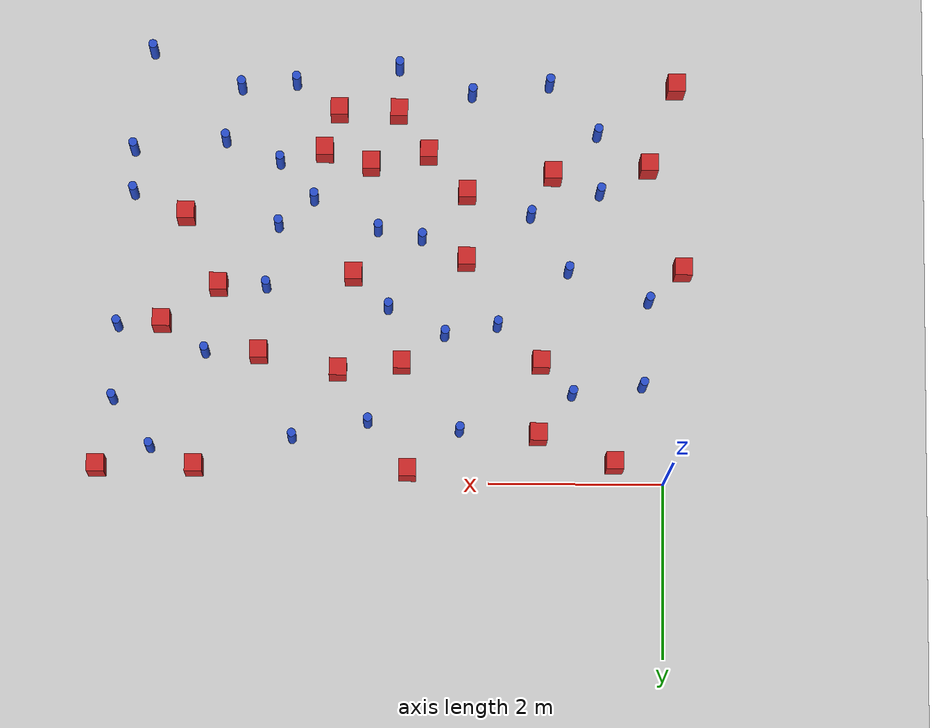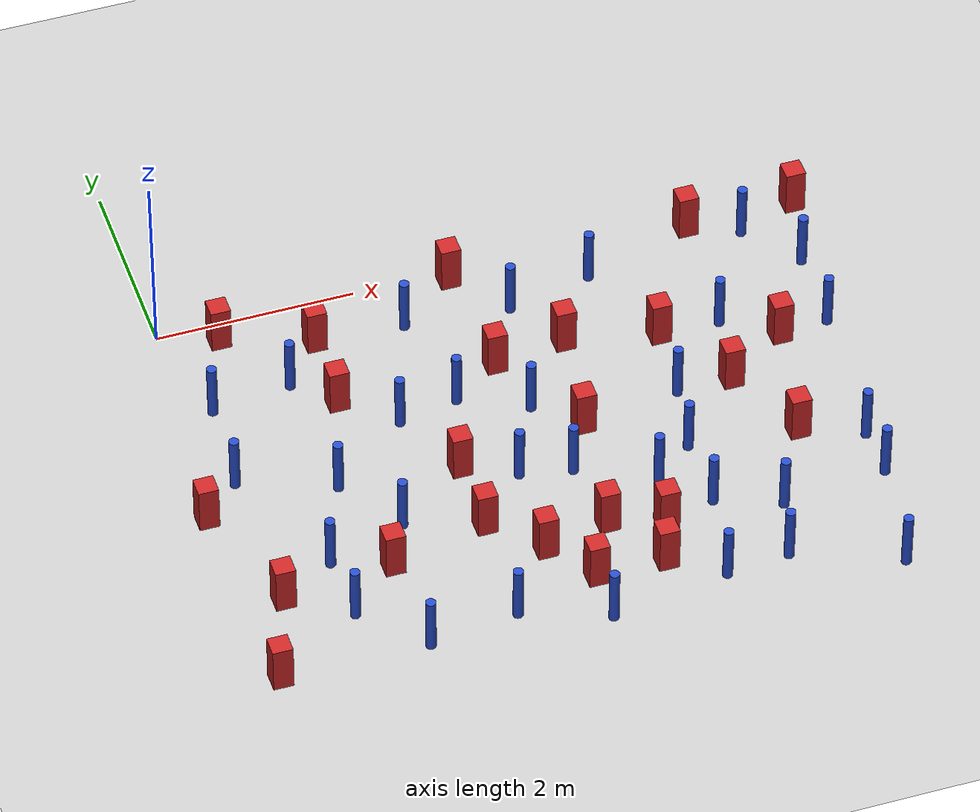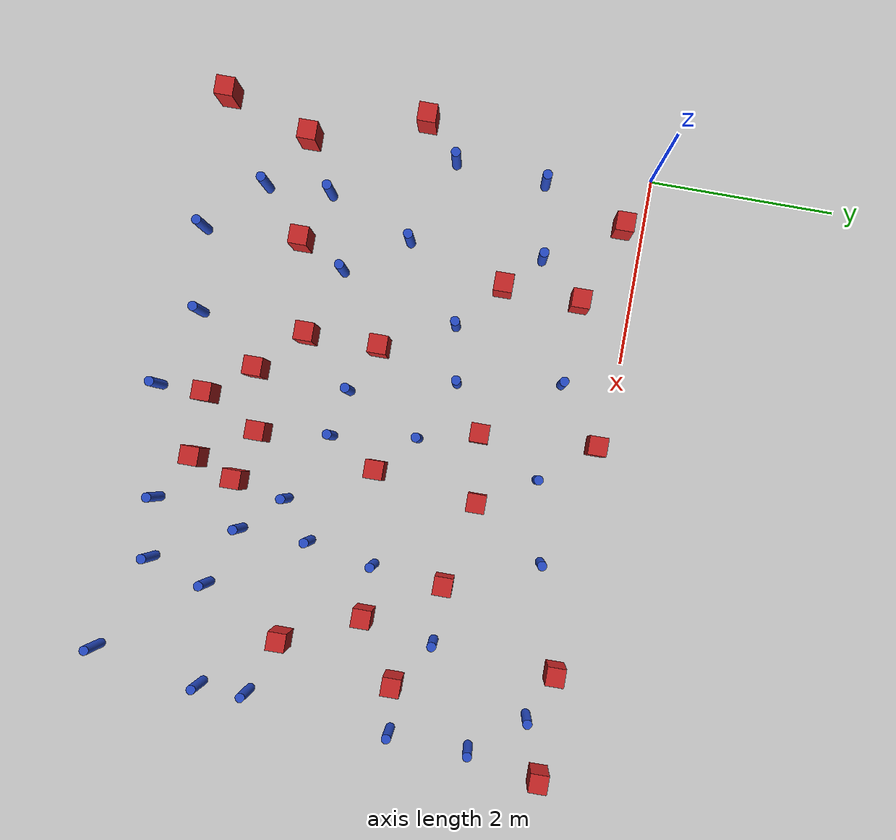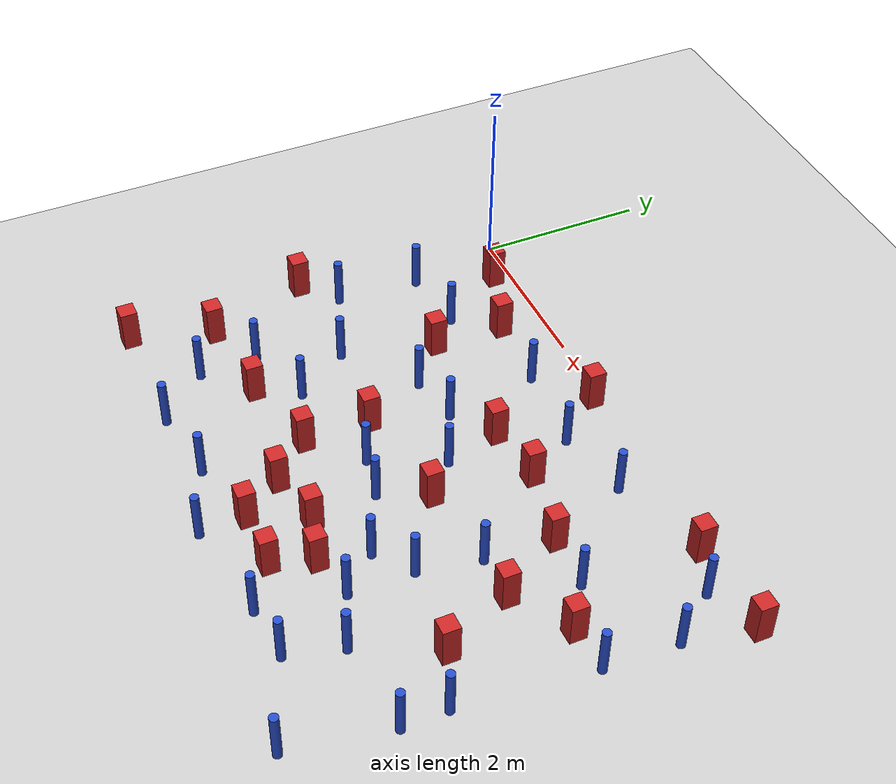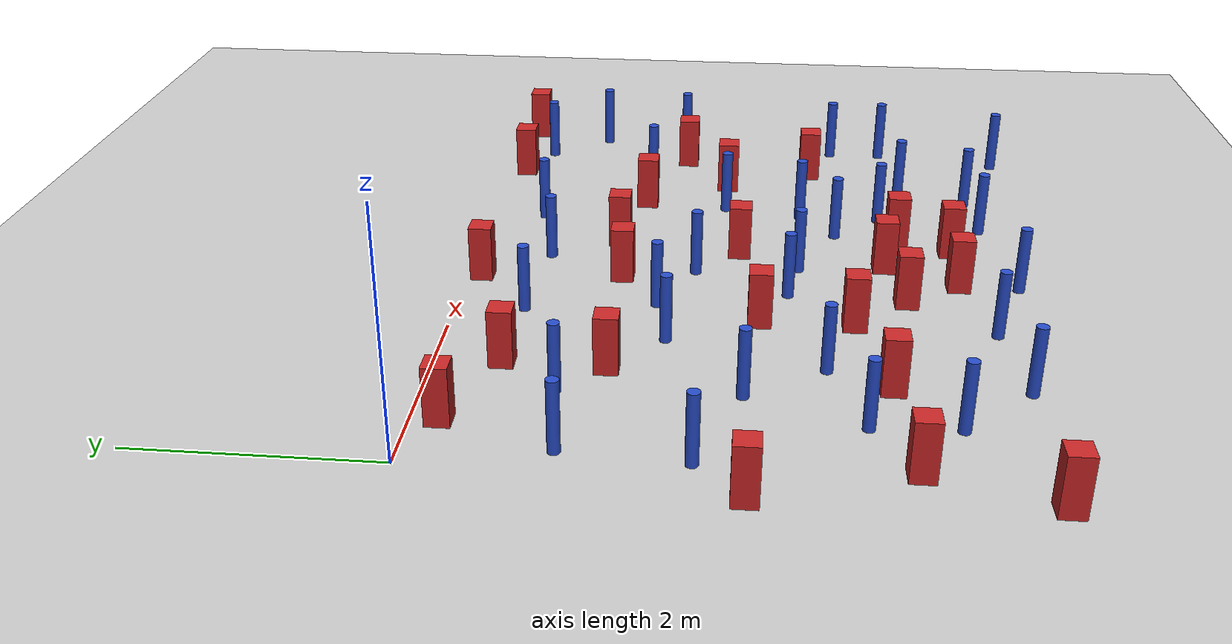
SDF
<sdf version="1.6">
 <world name="default">
  <model name="ground_plane">
   <static>1</static>
   <link name="link">
    <collision name="collision">
     <geometry><plane><normal>0 0 1</normal><size>100 100</size></plane></geometry>
     <surface><friction><ode><mu>100</mu><mu2>50</mu2></ode></friction></surface>
    </collision>
    <visual name="visual">
     <cast_shadows>0</cast_shadows>
     <geometry><plane><normal>0 0 1</normal><size>100 100</size></plane></geometry>
     <material>
      <ambient>1.0 1.0 1.0 1.0</ambient>
      <diffuse>0.8 0.8 0.8 1.0</diffuse>
      <specular>0.01 0.01 0.01 1.000000</specular>
     </material>
    </visual>
   </link>
  </model>
  <model name="pole_obstacle0">
   <static>true</static>
   <pose>2.21565794026 -4.52919180327 7.38925637345e-09 -8.47170692798e-08 1.24976765033e-08 -1.74513093019e-07</pose>
   <link name="link">
    <pose>0 0 0.3 0 -0 0</pose>
    <inertial>
     <mass>1</mass>
     <inertia><ixx>0.145833</ixx><ixy>0</ixy><ixz>0</ixz><iyy>0.145833</iyy><iyz>0</iyz><izz>0.125</izz></inertia>
    </inertial>
    <collision name="collision">
     <geometry><cylinder><radius>0.05</radius><length>.6</length></cylinder></geometry>
    </collision>
    <visual name="visual">
     <geometry><cylinder><radius>0.05</radius><length>.6</length></cylinder></geometry>
     <material>
      <script><name>Gazebo/Blue</name><uri>file://media/materials/scripts/gazebo.material</uri></script>
     </material>
    </visual>
   </link>
  </model>
  <model name="pole_obstacle4">
   <static>true</static>
   <pose>5.06345819993 -3.96751230476 7.38925637345e-09 -8.47170692799e-08 1.24976764984e-08 -1.7451309302e-07</pose>
   <link name="link">
    <pose>0 0 0.3 0 -0 0</pose>
    <inertial>
     <mass>1</mass>
     <inertia><ixx>0.145833</ixx><ixy>0</ixy><ixz>0</ixz><iyy>0.145833</iyy><iyz>0</iyz><izz>0.125</izz></inertia>
    </inertial>
    <collision name="collision">
     <geometry><cylinder><radius>0.05</radius><length>.6</length></cylinder></geometry>
    </collision>
    <visual name="visual">
     <geometry><cylinder><radius>0.05</radius><length>.6</length></cylinder></geometry>
     <material>
      <script><name>Gazebo/Blue</name><uri>file://media/materials/scripts/gazebo.material</uri></script>
     </material>
    </visual>
   </link>
  </model>
  <model name="pole_obstacle8">
   <static>true</static>
   <pose>4.43319757617 -3.71783626393 7.38925637345e-09 -8.47170692798e-08 1.24976764937e-08 -1.74513093023e-07</pose>
   <link name="link">
    <pose>0 0 0.3 0 -0 0</pose>
    <inertial>
     <mass>1</mass>
     <inertia><ixx>0.145833</ixx><ixy>0</ixy><ixz>0</ixz><iyy>0.145833</iyy><iyz>0</iyz><izz>0.125</izz></inertia>
    </inertial>
    <collision name="collision">
     <geometry><cylinder><radius>0.05</radius><length>.6</length></cylinder></geometry>
    </collision>
    <visual name="visual">
     <geometry><cylinder><radius>0.05</radius><length>.6</length></cylinder></geometry>
     <material>
      <script><name>Gazebo/Blue</name><uri>file://media/materials/scripts/gazebo.material</uri></script>
     </material>
    </visual>
   </link>
  </model>
  <model name="square_post_obstacle15">
   <static>true</static>
   <pose>-0.140066669585 -4.63006801939 1.91545236811e-07 -7.35059704564e-06 1.12565212e-07 2.39332434364e-05</pose>
   <link name="link">
    <pose>0 0 0.25 0 -0 0</pose>
    <inertial>
     <mass>100</mass>
     <inertia>
      <ixx>0.166667</ixx>
      <ixy>0</ixy>
      <ixz>0</ixz>
      <iyy>0.166667</iyy>
      <iyz>0</iyz>
      <izz>0.166667</izz>
     </inertia>
    </inertial>
    <collision name="collision"><geometry><box><size>.2 .2 .5</size></box></geometry></collision>
    <visual name="visual">
     <geometry><box><size>.2 .2 .5</size></box></geometry>
     <material>
      <script><name>Gazebo/Red</name><uri>file://media/materials/scripts/gazebo.material</uri></script>
     </material>
    </visual>
   </link>
  </model>
  <model name="square_post_obstacle18">
   <static>true</static>
   <pose>0.172084083501 -3.69220295209 1.91545236811e-07 -7.35059704564e-06 1.12565212e-07 2.39332434364e-05</pose>
   <link name="link">
    <pose>0 0 0.25 0 -0 0</pose>
    <inertial>
     <mass>100</mass>
     <inertia>
      <ixx>0.166667</ixx>
      <ixy>0</ixy>
      <ixz>0</ixz>
      <iyy>0.166667</iyy>
      <iyz>0</iyz>
      <izz>0.166667</izz>
     </inertia>
    </inertial>
    <collision name="collision"><geometry><box><size>.2 .2 .5</size></box></geometry></collision>
    <visual name="visual">
     <geometry><box><size>.2 .2 .5</size></box></geometry>
     <material>
      <script><name>Gazebo/Red</name><uri>file://media/materials/scripts/gazebo.material</uri></script>
     </material>
    </visual>
   </link>
  </model>
  <model name="square_post_obstacle19">
   <static>true</static>
   <pose>0.567349872004 -0.228023869864 1.91545236811e-07 -7.35059704564e-06 1.12565212e-07 2.39332434364e-05</pose>
   <link name="link">
    <pose>0 0 0.25 0 -0 0</pose>
    <inertial>
     <mass>100</mass>
     <inertia>
      <ixx>0.166667</ixx>
      <ixy>0</ixy>
      <ixz>0</ixz>
      <iyy>0.166667</iyy>
      <iyz>0</iyz>
      <izz>0.166667</izz>
     </inertia>
    </inertial>
    <collision name="collision"><geometry><box><size>.2 .2 .5</size></box></geometry></collision>
    <visual name="visual">
     <geometry><box><size>.2 .2 .5</size></box></geometry>
     <material>
      <script><name>Gazebo/Red</name><uri>file://media/materials/scripts/gazebo.material</uri></script>
     </material>
    </visual>
   </link>
  </model>
  <model name="square_post_obstacle20">
   <static>true</static>
   <pose>4.65521627335 -1.47987948568 1.91545236811e-07 -7.35059704564e-06 1.12565212e-07 2.39332434364e-05</pose>
   <link name="link">
    <pose>0 0 0.25 0 -0 0</pose>
    <inertial>
     <mass>100</mass>
     <inertia>
      <ixx>0.166667</ixx>
      <ixy>0</ixy>
      <ixz>0</ixz>
      <iyy>0.166667</iyy>
      <iyz>0</iyz>
      <izz>0.166667</izz>
     </inertia>
    </inertial>
    <collision name="collision"><geometry><box><size>.2 .2 .5</size></box></geometry></collision>
    <visual name="visual">
     <geometry><box><size>.2 .2 .5</size></box></geometry>
     <material>
      <script><name>Gazebo/Red</name><uri>file://media/materials/scripts/gazebo.material</uri></script>
     </material>
    </visual>
   </link>
  </model>
  <model name="pole_obstacle12">
   <static>true</static>
   <pose>0.170691172072 -2.10585391311 7.38925637345e-09 -8.47170692792e-08 1.24976764391e-08 -1.74513093041e-07</pose>
   <link name="link">
    <pose>0 0 0.3 0 -0 0</pose>
    <inertial>
     <mass>1</mass>
     <inertia><ixx>0.145833</ixx><ixy>0</ixy><ixz>0</ixz><iyy>0.145833</iyy><iyz>0</iyz><izz>0.125</izz></inertia>
    </inertial>
    <collision name="collision">
     <geometry><cylinder><radius>0.05</radius><length>.6</length></cylinder></geometry>
    </collision>
    <visual name="visual">
     <geometry><cylinder><radius>0.05</radius><length>.6</length></cylinder></geometry>
     <material>
      <script><name>Gazebo/Blue</name><uri>file://media/materials/scripts/gazebo.material</uri></script>
     </material>
    </visual>
   </link>
  </model>
  <model name="pole_obstacle24">
   <static>true</static>
   <pose>2.34218650852 -0.590916602325 7.38925637345e-09 -8.471706928e-08 1.24976765177e-08 -1.74513093012e-07</pose>
   <link name="link">
    <pose>0 0 0.3 0 -0 0</pose>
    <inertial>
     <mass>1</mass>
     <inertia><ixx>0.145833</ixx><ixy>0</ixy><ixz>0</ixz><iyy>0.145833</iyy><iyz>0</iyz><izz>0.125</izz></inertia>
    </inertial>
    <collision name="collision">
     <geometry><cylinder><radius>0.05</radius><length>.6</length></cylinder></geometry>
    </collision>
    <visual name="visual">
     <geometry><cylinder><radius>0.05</radius><length>.6</length></cylinder></geometry>
     <material>
      <script><name>Gazebo/Blue</name><uri>file://media/materials/scripts/gazebo.material</uri></script>
     </material>
    </visual>
   </link>
  </model>
  <model name="pole_obstacle29">
   <static>true</static>
   <pose>3.39538516002 -0.683030293087 7.38925637345e-09 -8.471706928e-08 1.24976765177e-08 -1.74513093012e-07</pose>
   <link name="link">
    <pose>0 0 0.3 0 -0 0</pose>
    <inertial>
     <mass>1</mass>
     <inertia><ixx>0.145833</ixx><ixy>0</ixy><ixz>0</ixz><iyy>0.145833</iyy><iyz>0</iyz><izz>0.125</izz></inertia>
    </inertial>
    <collision name="collision">
     <geometry><cylinder><radius>0.05</radius><length>.6</length></cylinder></geometry>
    </collision>
    <visual name="visual">
     <geometry><cylinder><radius>0.05</radius><length>.6</length></cylinder></geometry>
     <material>
      <script><name>Gazebo/Blue</name><uri>file://media/materials/scripts/gazebo.material</uri></script>
     </material>
    </visual>
   </link>
  </model>
  <model name="pole_obstacle34">
   <static>true</static>
   <pose>0.24053964976 -1.12207414975 7.38925637345e-09 -8.47170692798e-08 1.24976764968e-08 -1.74513093023e-07</pose>
   <link name="link">
    <pose>0 0 0.3 0 -0 0</pose>
    <inertial>
     <mass>1</mass>
     <inertia><ixx>0.145833</ixx><ixy>0</ixy><ixz>0</ixz><iyy>0.145833</iyy><iyz>0</iyz><izz>0.125</izz></inertia>
    </inertial>
    <collision name="collision">
     <geometry><cylinder><radius>0.05</radius><length>.6</length></cylinder></geometry>
    </collision>
    <visual name="visual">
     <geometry><cylinder><radius>0.05</radius><length>.6</length></cylinder></geometry>
     <material>
      <script><name>Gazebo/Blue</name><uri>file://media/materials/scripts/gazebo.material</uri></script>
     </material>
    </visual>
   </link>
  </model>
  <model name="pole_obstacle38">
   <static>true</static>
   <pose>4.2520124207 -4.65607812402 7.38925637345e-09 -8.47170692796e-08 1.24976764786e-08 -1.74513093032e-07</pose>
   <link name="link">
    <pose>0 0 0.3 0 -0 0</pose>
    <inertial>
     <mass>1</mass>
     <inertia><ixx>0.145833</ixx><ixy>0</ixy><ixz>0</ixz><iyy>0.145833</iyy><iyz>0</iyz><izz>0.125</izz></inertia>
    </inertial>
    <collision name="collision">
     <geometry><cylinder><radius>0.05</radius><length>.6</length></cylinder></geometry>
    </collision>
    <visual name="visual">
     <geometry><cylinder><radius>0.05</radius><length>.6</length></cylinder></geometry>
     <material>
      <script><name>Gazebo/Blue</name><uri>file://media/materials/scripts/gazebo.material</uri></script>
     </material>
    </visual>
   </link>
  </model>
  <model name="pole_obstacle43">
   <static>true</static>
   <pose>4.26123432632 -0.4997863693 7.38925637345e-09 -8.471706928e-08 1.24976765164e-08 -1.74513093013e-07</pose>
   <link name="link">
    <pose>0 0 0.3 0 -0 0</pose>
    <inertial>
     <mass>1</mass>
     <inertia><ixx>0.145833</ixx><ixy>0</ixy><ixz>0</ixz><iyy>0.145833</iyy><iyz>0</iyz><izz>0.125</izz></inertia>
    </inertial>
    <collision name="collision">
     <geometry><cylinder><radius>0.05</radius><length>.6</length></cylinder></geometry>
    </collision>
    <visual name="visual">
     <geometry><cylinder><radius>0.05</radius><length>.6</length></cylinder></geometry>
     <material>
      <script><name>Gazebo/Blue</name><uri>file://media/materials/scripts/gazebo.material</uri></script>
     </material>
    </visual>
   </link>
  </model>
  <model name="square_post_obstacle51">
   <static>true</static>
   <pose>2.27304874195 -2.57901750373 1.91545236811e-07 -7.35059704564e-06 1.12565212e-07 2.39332434364e-05</pose>
   <link name="link">
    <pose>0 0 0.25 0 -0 0</pose>
    <inertial>
     <mass>100</mass>
     <inertia>
      <ixx>0.166667</ixx>
      <ixy>0</ixy>
      <ixz>0</ixz>
      <iyy>0.166667</iyy>
      <iyz>0</iyz>
      <izz>0.166667</izz>
     </inertia>
    </inertial>
    <collision name="collision"><geometry><box><size>.2 .2 .5</size></box></geometry></collision>
    <visual name="visual">
     <geometry><box><size>.2 .2 .5</size></box></geometry>
     <material>
      <script><name>Gazebo/Red</name><uri>file://media/materials/scripts/gazebo.material</uri></script>
     </material>
    </visual>
   </link>
  </model>
  <model name="pole_obstacle56">
   <static>true</static>
   <pose>1.91127057686 -1.81601640767 7.38925637345e-09 -8.471706928e-08 1.24976765079e-08 -1.74513093017e-07</pose>
   <link name="link">
    <pose>0 0 0.3 0 -0 0</pose>
    <inertial>
     <mass>1</mass>
     <inertia><ixx>0.145833</ixx><ixy>0</ixy><ixz>0</ixz><iyy>0.145833</iyy><iyz>0</iyz><izz>0.125</izz></inertia>
    </inertial>
    <collision name="collision">
     <geometry><cylinder><radius>0.05</radius><length>.6</length></cylinder></geometry>
    </collision>
    <visual name="visual">
     <geometry><cylinder><radius>0.05</radius><length>.6</length></cylinder></geometry>
     <material>
      <script><name>Gazebo/Blue</name><uri>file://media/materials/scripts/gazebo.material</uri></script>
     </material>
    </visual>
   </link>
  </model>
  <model name="pole_obstacle58">
   <static>true</static>
   <pose>5.88986669302 -0.377942980603 7.38925637345e-09 -8.47170692798e-08 1.24976765003e-08 -1.7451309302e-07</pose>
   <link name="link">
    <pose>0 0 0.3 0 -0 0</pose>
    <inertial>
     <mass>1</mass>
     <inertia><ixx>0.145833</ixx><ixy>0</ixy><ixz>0</ixz><iyy>0.145833</iyy><iyz>0</iyz><izz>0.125</izz></inertia>
    </inertial>
    <collision name="collision">
     <geometry><cylinder><radius>0.05</radius><length>.6</length></cylinder></geometry>
    </collision>
    <visual name="visual">
     <geometry><cylinder><radius>0.05</radius><length>.6</length></cylinder></geometry>
     <material>
      <script><name>Gazebo/Blue</name><uri>file://media/materials/scripts/gazebo.material</uri></script>
     </material>
    </visual>
   </link>
  </model>
  <model name="pole_obstacle59">
   <static>true</static>
   <pose>1.32038826176 -4.64942089455 7.38925637345e-09 -8.47170692799e-08 1.24976765033e-08 -1.74513093018e-07</pose>
   <link name="link">
    <pose>0 0 0.3 0 -0 0</pose>
    <inertial>
     <mass>1</mass>
     <inertia><ixx>0.145833</ixx><ixy>0</ixy><ixz>0</ixz><iyy>0.145833</iyy><iyz>0</iyz><izz>0.125</izz></inertia>
    </inertial>
    <collision name="collision">
     <geometry><cylinder><radius>0.05</radius><length>.6</length></cylinder></geometry>
    </collision>
    <visual name="visual">
     <geometry><cylinder><radius>0.05</radius><length>.6</length></cylinder></geometry>
     <material>
      <script><name>Gazebo/Blue</name><uri>file://media/materials/scripts/gazebo.material</uri></script>
     </material>
    </visual>
   </link>
  </model>
  <model name="pole_obstacle60">
   <static>true</static>
   <pose>3.29496227962 -2.92779434934 7.38925637345e-09 -8.47170692798e-08 1.24976764939e-08 -1.74513093025e-07</pose>
   <link name="link">
    <pose>0 0 0.3 0 -0 0</pose>
    <inertial>
     <mass>1</mass>
     <inertia><ixx>0.145833</ixx><ixy>0</ixy><ixz>0</ixz><iyy>0.145833</iyy><iyz>0</iyz><izz>0.125</izz></inertia>
    </inertial>
    <collision name="collision">
     <geometry><cylinder><radius>0.05</radius><length>.6</length></cylinder></geometry>
    </collision>
    <visual name="visual">
     <geometry><cylinder><radius>0.05</radius><length>.6</length></cylinder></geometry>
     <material>
      <script><name>Gazebo/Blue</name><uri>file://media/materials/scripts/gazebo.material</uri></script>
     </material>
    </visual>
   </link>
  </model>
  <model name="pole_obstacle66">
   <static>true</static>
   <pose>1.09570321825 -2.45223269176 7.38925637345e-09 -8.47170692799e-08 1.24976765053e-08 -1.74513093017e-07</pose>
   <link name="link">
    <pose>0 0 0.3 0 -0 0</pose>
    <inertial>
     <mass>1</mass>
     <inertia><ixx>0.145833</ixx><ixy>0</ixy><ixz>0</ixz><iyy>0.145833</iyy><iyz>0</iyz><izz>0.125</izz></inertia>
    </inertial>
    <collision name="collision">
     <geometry><cylinder><radius>0.05</radius><length>.6</length></cylinder></geometry>
    </collision>
    <visual name="visual">
     <geometry><cylinder><radius>0.05</radius><length>.6</length></cylinder></geometry>
     <material>
      <script><name>Gazebo/Blue</name><uri>file://media/materials/scripts/gazebo.material</uri></script>
     </material>
    </visual>
   </link>
  </model>
  <model name="square_post_obstacle73">
   <static>true</static>
   <pose>2.26826051512 -3.36510009528 1.91545236811e-07 -7.35059704564e-06 1.12565212e-07 2.39332434364e-05</pose>
   <link name="link">
    <pose>0 0 0.25 0 -0 0</pose>
    <inertial>
     <mass>100</mass>
     <inertia>
      <ixx>0.166667</ixx>
      <ixy>0</ixy>
      <ixz>0</ixz>
      <iyy>0.166667</iyy>
      <iyz>0</iyz>
      <izz>0.166667</izz>
     </inertia>
    </inertial>
    <collision name="collision"><geometry><box><size>.2 .2 .5</size></box></geometry></collision>
    <visual name="visual">
     <geometry><box><size>.2 .2 .5</size></box></geometry>
     <material>
      <script><name>Gazebo/Red</name><uri>file://media/materials/scripts/gazebo.material</uri></script>
     </material>
    </visual>
   </link>
  </model>
  <model name="pole_obstacle81">
   <static>true</static>
   <pose>2.78742843346 -2.82538489435 7.38925637345e-09 -8.47170692798e-08 1.24976764939e-08 -1.74513093025e-07</pose>
   <link name="link">
    <pose>0 0 0.3 0 -0 0</pose>
    <inertial>
     <mass>1</mass>
     <inertia><ixx>0.145833</ixx><ixy>0</ixy><ixz>0</ixz><iyy>0.145833</iyy><iyz>0</iyz><izz>0.125</izz></inertia>
    </inertial>
    <collision name="collision">
     <geometry><cylinder><radius>0.05</radius><length>.6</length></cylinder></geometry>
    </collision>
    <visual name="visual">
     <geometry><cylinder><radius>0.05</radius><length>.6</length></cylinder></geometry>
     <material>
      <script><name>Gazebo/Blue</name><uri>file://media/materials/scripts/gazebo.material</uri></script>
     </material>
    </visual>
   </link>
  </model>
  <model name="square_post_obstacle80">
   <static>true</static>
   <pose>-0.219474298482 -2.47706775925 1.91545236811e-07 -7.35059704564e-06 1.12565212e-07 2.39332434364e-05</pose>
   <link name="link">
    <pose>0 0 0.25 0 -0 0</pose>
    <inertial>
     <mass>100</mass>
     <inertia>
      <ixx>0.166667</ixx>
      <ixy>0</ixy>
      <ixz>0</ixz>
      <iyy>0.166667</iyy>
      <iyz>0</iyz>
      <izz>0.166667</izz>
     </inertia>
    </inertial>
    <collision name="collision"><geometry><box><size>.2 .2 .5</size></box></geometry></collision>
    <visual name="visual">
     <geometry><box><size>.2 .2 .5</size></box></geometry>
     <material>
      <script><name>Gazebo/Red</name><uri>file://media/materials/scripts/gazebo.material</uri></script>
     </material>
    </visual>
   </link>
  </model>
  <model name="pole_obstacle95">
   <static>true</static>
   <pose>0.76371783884 -4.06536145762 7.38925637345e-09 -8.471706928e-08 1.24976765086e-08 -1.74513093015e-07</pose>
   <link name="link">
    <pose>0 0 0.3 0 -0 0</pose>
    <inertial>
     <mass>1</mass>
     <inertia><ixx>0.145833</ixx><ixy>0</ixy><ixz>0</ixz><iyy>0.145833</iyy><iyz>0</iyz><izz>0.125</izz></inertia>
    </inertial>
    <collision name="collision">
     <geometry><cylinder><radius>0.05</radius><length>.6</length></cylinder></geometry>
    </collision>
    <visual name="visual">
     <geometry><cylinder><radius>0.05</radius><length>.6</length></cylinder></geometry>
     <material>
      <script><name>Gazebo/Blue</name><uri>file://media/materials/scripts/gazebo.material</uri></script>
     </material>
    </visual>
   </link>
  </model>
  <model name="pole_obstacle99">
   <static>true</static>
   <pose>4.03677898142 -3.28635391739 7.38925637345e-09 -8.47170692799e-08 1.24976765e-08 -1.7451309302e-07</pose>
   <link name="link">
    <pose>0 0 0.3 0 -0 0</pose>
    <inertial>
     <mass>1</mass>
     <inertia><ixx>0.145833</ixx><ixy>0</ixy><ixz>0</ixz><iyy>0.145833</iyy><iyz>0</iyz><izz>0.125</izz></inertia>
    </inertial>
    <collision name="collision">
     <geometry><cylinder><radius>0.05</radius><length>.6</length></cylinder></geometry>
    </collision>
    <visual name="visual">
     <geometry><cylinder><radius>0.05</radius><length>.6</length></cylinder></geometry>
     <material>
      <script><name>Gazebo/Blue</name><uri>file://media/materials/scripts/gazebo.material</uri></script>
     </material>
    </visual>
   </link>
  </model>
  <model name="square_post_obstacle95">
   <static>true</static>
   <pose>5.12837813614 -2.26232255468 1.91545236811e-07 -7.35059704564e-06 1.12565212e-07 2.39332434364e-05</pose>
   <link name="link">
    <pose>0 0 0.25 0 -0 0</pose>
    <inertial>
     <mass>100</mass>
     <inertia>
      <ixx>0.166667</ixx>
      <ixy>0</ixy>
      <ixz>0</ixz>
      <iyy>0.166667</iyy>
      <iyz>0</iyz>
      <izz>0.166667</izz>
     </inertia>
    </inertial>
    <collision name="collision"><geometry><box><size>.2 .2 .5</size></box></geometry></collision>
    <visual name="visual">
     <geometry><box><size>.2 .2 .5</size></box></geometry>
     <material>
      <script><name>Gazebo/Red</name><uri>file://media/materials/scripts/gazebo.material</uri></script>
     </material>
    </visual>
   </link>
  </model>
  <model name="pole_obstacle108">
   <static>true</static>
   <pose>6.1194646964 -3.34422834841 7.38925637345e-09 -8.47170692798e-08 1.24976764937e-08 -1.74513093023e-07</pose>
   <link name="link">
    <pose>0 0 0.3 0 -0 0</pose>
    <inertial>
     <mass>1</mass>
     <inertia><ixx>0.145833</ixx><ixy>0</ixy><ixz>0</ixz><iyy>0.145833</iyy><iyz>0</iyz><izz>0.125</izz></inertia>
    </inertial>
    <collision name="collision">
     <geometry><cylinder><radius>0.05</radius><length>.6</length></cylinder></geometry>
    </collision>
    <visual name="visual">
     <geometry><cylinder><radius>0.05</radius><length>.6</length></cylinder></geometry>
     <material>
      <script><name>Gazebo/Blue</name><uri>file://media/materials/scripts/gazebo.material</uri></script>
     </material>
    </visual>
   </link>
  </model>
  <model name="pole_obstacle110">
   <static>true</static>
   <pose>0.732797793774 -3.37354618795 7.38925637345e-09 -8.47170692799e-08 1.2497676509e-08 -1.74513093016e-07</pose>
   <link name="link">
    <pose>0 0 0.3 0 -0 0</pose>
    <inertial>
     <mass>1</mass>
     <inertia><ixx>0.145833</ixx><ixy>0</ixy><ixz>0</ixz><iyy>0.145833</iyy><iyz>0</iyz><izz>0.125</izz></inertia>
    </inertial>
    <collision name="collision">
     <geometry><cylinder><radius>0.05</radius><length>.6</length></cylinder></geometry>
    </collision>
    <visual name="visual">
     <geometry><cylinder><radius>0.05</radius><length>.6</length></cylinder></geometry>
     <material>
      <script><name>Gazebo/Blue</name><uri>file://media/materials/scripts/gazebo.material</uri></script>
     </material>
    </visual>
   </link>
  </model>
  <model name="square_post_obstacle101">
   <static>true</static>
   <pose>3.75489683627 -4.32233920438 1.91545236811e-07 -7.35059704564e-06 1.12565212e-07 2.39332434364e-05</pose>
   <link name="link">
    <pose>0 0 0.25 0 -0 0</pose>
    <inertial>
     <mass>100</mass>
     <inertia>
      <ixx>0.166667</ixx>
      <ixy>0</ixy>
      <ixz>0</ixz>
      <iyy>0.166667</iyy>
      <iyz>0</iyz>
      <izz>0.166667</izz>
     </inertia>
    </inertial>
    <collision name="collision"><geometry><box><size>.2 .2 .5</size></box></geometry></collision>
    <visual name="visual">
     <geometry><box><size>.2 .2 .5</size></box></geometry>
     <material>
      <script><name>Gazebo/Red</name><uri>file://media/materials/scripts/gazebo.material</uri></script>
     </material>
    </visual>
   </link>
  </model>
  <model name="pole_obstacle115">
   <static>true</static>
   <pose>1.04997099765 -1.02027828777 7.38925637345e-09 -8.47170692799e-08 1.24976765088e-08 -1.74513093014e-07</pose>
   <link name="link">
    <pose>0 0 0.3 0 -0 0</pose>
    <inertial>
     <mass>1</mass>
     <inertia><ixx>0.145833</ixx><ixy>0</ixy><ixz>0</ixz><iyy>0.145833</iyy><iyz>0</iyz><izz>0.125</izz></inertia>
    </inertial>
    <collision name="collision">
     <geometry><cylinder><radius>0.05</radius><length>.6</length></cylinder></geometry>
    </collision>
    <visual name="visual">
     <geometry><cylinder><radius>0.05</radius><length>.6</length></cylinder></geometry>
     <material>
      <script><name>Gazebo/Blue</name><uri>file://media/materials/scripts/gazebo.material</uri></script>
     </material>
    </visual>
   </link>
  </model>
  <model name="pole_obstacle118">
   <static>true</static>
   <pose>4.88753449344 -4.59837841115 7.38925637345e-09 -8.47170692796e-08 1.24976764786e-08 -1.74513093032e-07</pose>
   <link name="link">
    <pose>0 0 0.3 0 -0 0</pose>
    <inertial>
     <mass>1</mass>
     <inertia><ixx>0.145833</ixx><ixy>0</ixy><ixz>0</ixz><iyy>0.145833</iyy><iyz>0</iyz><izz>0.125</izz></inertia>
    </inertial>
    <collision name="collision">
     <geometry><cylinder><radius>0.05</radius><length>.6</length></cylinder></geometry>
    </collision>
    <visual name="visual">
     <geometry><cylinder><radius>0.05</radius><length>.6</length></cylinder></geometry>
     <material>
      <script><name>Gazebo/Blue</name><uri>file://media/materials/scripts/gazebo.material</uri></script>
     </material>
    </visual>
   </link>
  </model>
  <model name="square_post_obstacle107">
   <static>true</static>
   <pose>3.06502971952 -4.31384354359 1.91545236811e-07 -7.35059704564e-06 1.12565212e-07 2.39332434364e-05</pose>
   <link name="link">
    <pose>0 0 0.25 0 -0 0</pose>
    <inertial>
     <mass>100</mass>
     <inertia>
      <ixx>0.166667</ixx>
      <ixy>0</ixy>
      <ixz>0</ixz>
      <iyy>0.166667</iyy>
      <iyz>0</iyz>
      <izz>0.166667</izz>
     </inertia>
    </inertial>
    <collision name="collision"><geometry><box><size>.2 .2 .5</size></box></geometry></collision>
    <visual name="visual">
     <geometry><box><size>.2 .2 .5</size></box></geometry>
     <material>
      <script><name>Gazebo/Red</name><uri>file://media/materials/scripts/gazebo.material</uri></script>
     </material>
    </visual>
   </link>
  </model>
  <model name="square_post_obstacle111">
   <static>true</static>
   <pose>2.93944634478 -0.124234732507 1.91545236811e-07 -7.35059704564e-06 1.12565212e-07 2.39332434364e-05</pose>
   <link name="link">
    <pose>0 0 0.25 0 -0 0</pose>
    <inertial>
     <mass>100</mass>
     <inertia>
      <ixx>0.166667</ixx>
      <ixy>0</ixy>
      <ixz>0</ixz>
      <iyy>0.166667</iyy>
      <iyz>0</iyz>
      <izz>0.166667</izz>
     </inertia>
    </inertial>
    <collision name="collision"><geometry><box><size>.2 .2 .5</size></box></geometry></collision>
    <visual name="visual">
     <geometry><box><size>.2 .2 .5</size></box></geometry>
     <material>
      <script><name>Gazebo/Red</name><uri>file://media/materials/scripts/gazebo.material</uri></script>
     </material>
    </visual>
   </link>
  </model>
  <model name="pole_obstacle129">
   <static>true</static>
   <pose>1.53144431457 -3.10410066432 7.38925637345e-09 -8.47170692799e-08 1.24976765053e-08 -1.74513093017e-07</pose>
   <link name="link">
    <pose>0 0 0.3 0 -0 0</pose>
    <inertial>
     <mass>1</mass>
     <inertia><ixx>0.145833</ixx><ixy>0</ixy><ixz>0</ixz><iyy>0.145833</iyy><iyz>0</iyz><izz>0.125</izz></inertia>
    </inertial>
    <collision name="collision">
     <geometry><cylinder><radius>0.05</radius><length>.6</length></cylinder></geometry>
    </collision>
    <visual name="visual">
     <geometry><cylinder><radius>0.05</radius><length>.6</length></cylinder></geometry>
     <material>
      <script><name>Gazebo/Blue</name><uri>file://media/materials/scripts/gazebo.material</uri></script>
     </material>
    </visual>
   </link>
  </model>
  <model name="square_post_obstacle120">
   <static>true</static>
   <pose>1.44215843627 -0.550417824234 1.91545236811e-07 -7.35059704564e-06 1.12565212e-07 2.39332434364e-05</pose>
   <link name="link">
    <pose>0 0 0.25 0 -0 0</pose>
    <inertial>
     <mass>100</mass>
     <inertia>
      <ixx>0.166667</ixx>
      <ixy>0</ixy>
      <ixz>0</ixz>
      <iyy>0.166667</iyy>
      <iyz>0</iyz>
      <izz>0.166667</izz>
     </inertia>
    </inertial>
    <collision name="collision"><geometry><box><size>.2 .2 .5</size></box></geometry></collision>
    <visual name="visual">
     <geometry><box><size>.2 .2 .5</size></box></geometry>
     <material>
      <script><name>Gazebo/Red</name><uri>file://media/materials/scripts/gazebo.material</uri></script>
     </material>
    </visual>
   </link>
  </model>
  <model name="square_post_obstacle132">
   <static>true</static>
   <pose>3.38091503765 -3.69263572819 1.91545236811e-07 -7.35059704564e-06 1.12565212e-07 2.39332434364e-05</pose>
   <link name="link">
    <pose>0 0 0.25 0 -0 0</pose>
    <inertial>
     <mass>100</mass>
     <inertia>
      <ixx>0.166667</ixx>
      <ixy>0</ixy>
      <ixz>0</ixz>
      <iyy>0.166667</iyy>
      <iyz>0</iyz>
      <izz>0.166667</izz>
     </inertia>
    </inertial>
    <collision name="collision"><geometry><box><size>.2 .2 .5</size></box></geometry></collision>
    <visual name="visual">
     <geometry><box><size>.2 .2 .5</size></box></geometry>
     <material>
      <script><name>Gazebo/Red</name><uri>file://media/materials/scripts/gazebo.material</uri></script>
     </material>
    </visual>
   </link>
  </model>
  <model name="pole_obstacle143">
   <static>true</static>
   <pose>5.91448106658 -5.01469298569 7.38925637345e-09 -8.47170692796e-08 1.24976764786e-08 -1.74513093032e-07</pose>
   <link name="link">
    <pose>0 0 0.3 0 -0 0</pose>
    <inertial>
     <mass>1</mass>
     <inertia><ixx>0.145833</ixx><ixy>0</ixy><ixz>0</ixz><iyy>0.145833</iyy><iyz>0</iyz><izz>0.125</izz></inertia>
    </inertial>
    <collision name="collision">
     <geometry><cylinder><radius>0.05</radius><length>.6</length></cylinder></geometry>
    </collision>
    <visual name="visual">
     <geometry><cylinder><radius>0.05</radius><length>.6</length></cylinder></geometry>
     <material>
      <script><name>Gazebo/Blue</name><uri>file://media/materials/scripts/gazebo.material</uri></script>
     </material>
    </visual>
   </link>
  </model>
  <model name="square_post_obstacle135">
   <static>true</static>
   <pose>3.74411811949 -1.28302508917 1.91545236811e-07 -7.35059704564e-06 1.12565212e-07 2.39332434364e-05</pose>
   <link name="link">
    <pose>0 0 0.25 0 -0 0</pose>
    <inertial>
     <mass>100</mass>
     <inertia>
      <ixx>0.166667</ixx>
      <ixy>0</ixy>
      <ixz>0</ixz>
      <iyy>0.166667</iyy>
      <iyz>0</iyz>
      <izz>0.166667</izz>
     </inertia>
    </inertial>
    <collision name="collision"><geometry><box><size>.2 .2 .5</size></box></geometry></collision>
    <visual name="visual">
     <geometry><box><size>.2 .2 .5</size></box></geometry>
     <material>
      <script><name>Gazebo/Red</name><uri>file://media/materials/scripts/gazebo.material</uri></script>
     </material>
    </visual>
   </link>
  </model>
  <model name="pole_obstacle147">
   <static>true</static>
   <pose>3.06041598401 -4.83858284127 7.38925637345e-09 -8.47170692798e-08 1.24976765033e-08 -1.74513093019e-07</pose>
   <link name="link">
    <pose>0 0 0.3 0 -0 0</pose>
    <inertial>
     <mass>1</mass>
     <inertia><ixx>0.145833</ixx><ixy>0</ixy><ixz>0</ixz><iyy>0.145833</iyy><iyz>0</iyz><izz>0.125</izz></inertia>
    </inertial>
    <collision name="collision">
     <geometry><cylinder><radius>0.05</radius><length>.6</length></cylinder></geometry>
    </collision>
    <visual name="visual">
     <geometry><cylinder><radius>0.05</radius><length>.6</length></cylinder></geometry>
     <material>
      <script><name>Gazebo/Blue</name><uri>file://media/materials/scripts/gazebo.material</uri></script>
     </material>
    </visual>
   </link>
  </model>
  <model name="pole_obstacle149">
   <static>true</static>
   <pose>2.51782159953 -1.70252349101 7.38925637345e-09 -8.471706928e-08 1.24976765152e-08 -1.74513093012e-07</pose>
   <link name="link">
    <pose>0 0 0.3 0 -0 0</pose>
    <inertial>
     <mass>1</mass>
     <inertia><ixx>0.145833</ixx><ixy>0</ixy><ixz>0</ixz><iyy>0.145833</iyy><iyz>0</iyz><izz>0.125</izz></inertia>
    </inertial>
    <collision name="collision">
     <geometry><cylinder><radius>0.05</radius><length>.6</length></cylinder></geometry>
    </collision>
    <visual name="visual">
     <geometry><cylinder><radius>0.05</radius><length>.6</length></cylinder></geometry>
     <material>
      <script><name>Gazebo/Blue</name><uri>file://media/materials/scripts/gazebo.material</uri></script>
     </material>
    </visual>
   </link>
  </model>
  <model name="square_post_obstacle143">
   <static>true</static>
   <pose>5.51260894616 -3.09330878311 1.91545236811e-07 -7.35059704564e-06 1.12565212e-07 2.39332434364e-05</pose>
   <link name="link">
    <pose>0 0 0.25 0 -0 0</pose>
    <inertial>
     <mass>100</mass>
     <inertia>
      <ixx>0.166667</ixx>
      <ixy>0</ixy>
      <ixz>0</ixz>
      <iyy>0.166667</iyy>
      <iyz>0</iyz>
      <izz>0.166667</izz>
     </inertia>
    </inertial>
    <collision name="collision"><geometry><box><size>.2 .2 .5</size></box></geometry></collision>
    <visual name="visual">
     <geometry><box><size>.2 .2 .5</size></box></geometry>
     <material>
      <script><name>Gazebo/Red</name><uri>file://media/materials/scripts/gazebo.material</uri></script>
     </material>
    </visual>
   </link>
  </model>
  <model name="pole_obstacle155">
   <static>true</static>
   <pose>6.12479171106 -3.85728745291 7.38925637345e-09 -8.47170692798e-08 1.24976764937e-08 -1.74513093023e-07</pose>
   <link name="link">
    <pose>0 0 0.3 0 -0 0</pose>
    <inertial>
     <mass>1</mass>
     <inertia><ixx>0.145833</ixx><ixy>0</ixy><ixz>0</ixz><iyy>0.145833</iyy><iyz>0</iyz><izz>0.125</izz></inertia>
    </inertial>
    <collision name="collision">
     <geometry><cylinder><radius>0.05</radius><length>.6</length></cylinder></geometry>
    </collision>
    <visual name="visual">
     <geometry><cylinder><radius>0.05</radius><length>.6</length></cylinder></geometry>
     <material>
      <script><name>Gazebo/Blue</name><uri>file://media/materials/scripts/gazebo.material</uri></script>
     </material>
    </visual>
   </link>
  </model>
  <model name="square_post_obstacle145">
   <static>true</static>
   <pose>2.71761027025 -3.8325895276 1.91545236811e-07 -7.35059704564e-06 1.12565212e-07 2.39332434364e-05</pose>
   <link name="link">
    <pose>0 0 0.25 0 -0 0</pose>
    <inertial>
     <mass>100</mass>
     <inertia>
      <ixx>0.166667</ixx>
      <ixy>0</ixy>
      <ixz>0</ixz>
      <iyy>0.166667</iyy>
      <iyz>0</iyz>
      <izz>0.166667</izz>
     </inertia>
    </inertial>
    <collision name="collision"><geometry><box><size>.2 .2 .5</size></box></geometry></collision>
    <visual name="visual">
     <geometry><box><size>.2 .2 .5</size></box></geometry>
     <material>
      <script><name>Gazebo/Red</name><uri>file://media/materials/scripts/gazebo.material</uri></script>
     </material>
    </visual>
   </link>
  </model>
  <model name="square_post_obstacle150">
   <static>true</static>
   <pose>1.41183161109 -1.38426315139 1.91545236811e-07 -7.35059704564e-06 1.12565212e-07 2.39332434364e-05</pose>
   <link name="link">
    <pose>0 0 0.25 0 -0 0</pose>
    <inertial>
     <mass>100</mass>
     <inertia>
      <ixx>0.166667</ixx>
      <ixy>0</ixy>
      <ixz>0</ixz>
      <iyy>0.166667</iyy>
      <iyz>0</iyz>
      <izz>0.166667</izz>
     </inertia>
    </inertial>
    <collision name="collision"><geometry><box><size>.2 .2 .5</size></box></geometry></collision>
    <visual name="visual">
     <geometry><box><size>.2 .2 .5</size></box></geometry>
     <material>
      <script><name>Gazebo/Red</name><uri>file://media/materials/scripts/gazebo.material</uri></script>
     </material>
    </visual>
   </link>
  </model>
  <model name="pole_obstacle157">
   <static>true</static>
   <pose>5.27331490474 -1.48734727061 7.38925637345e-09 -8.471706928e-08 1.24976765134e-08 -1.74513093015e-07</pose>
   <link name="link">
    <pose>0 0 0.3 0 -0 0</pose>
    <inertial>
     <mass>1</mass>
     <inertia><ixx>0.145833</ixx><ixy>0</ixy><ixz>0</ixz><iyy>0.145833</iyy><iyz>0</iyz><izz>0.125</izz></inertia>
    </inertial>
    <collision name="collision">
     <geometry><cylinder><radius>0.05</radius><length>.6</length></cylinder></geometry>
    </collision>
    <visual name="visual">
     <geometry><cylinder><radius>0.05</radius><length>.6</length></cylinder></geometry>
     <material>
      <script><name>Gazebo/Blue</name><uri>file://media/materials/scripts/gazebo.material</uri></script>
     </material>
    </visual>
   </link>
  </model>
  <model name="pole_obstacle161">
   <static>true</static>
   <pose>4.44302628122 -2.97008005539 7.38925637345e-09 -8.47170692798e-08 1.24976764937e-08 -1.74513093023e-07</pose>
   <link name="link">
    <pose>0 0 0.3 0 -0 0</pose>
    <inertial>
     <mass>1</mass>
     <inertia><ixx>0.145833</ixx><ixy>0</ixy><ixz>0</ixz><iyy>0.145833</iyy><iyz>0</iyz><izz>0.125</izz></inertia>
    </inertial>
    <collision name="collision">
     <geometry><cylinder><radius>0.05</radius><length>.6</length></cylinder></geometry>
    </collision>
    <visual name="visual">
     <geometry><cylinder><radius>0.05</radius><length>.6</length></cylinder></geometry>
     <material>
      <script><name>Gazebo/Blue</name><uri>file://media/materials/scripts/gazebo.material</uri></script>
     </material>
    </visual>
   </link>
  </model>
  <model name="square_post_obstacle154">
   <static>true</static>
   <pose>1.28241950488 -3.59306528174 1.91545236811e-07 -7.35059704564e-06 1.12565212e-07 2.39332434364e-05</pose>
   <link name="link">
    <pose>0 0 0.25 0 -0 0</pose>
    <inertial>
     <mass>100</mass>
     <inertia>
      <ixx>0.166667</ixx>
      <ixy>0</ixy>
      <ixz>0</ixz>
      <iyy>0.166667</iyy>
      <iyz>0</iyz>
      <izz>0.166667</izz>
     </inertia>
    </inertial>
    <collision name="collision"><geometry><box><size>.2 .2 .5</size></box></geometry></collision>
    <visual name="visual">
     <geometry><box><size>.2 .2 .5</size></box></geometry>
     <material>
      <script><name>Gazebo/Red</name><uri>file://media/materials/scripts/gazebo.material</uri></script>
     </material>
    </visual>
   </link>
  </model>
  <model name="pole_obstacle178">
   <static>true</static>
   <pose>3.17044939888 -2.01409728427 7.38925637345e-09 -8.471706928e-08 1.2497676511e-08 -1.74513093015e-07</pose>
   <link name="link">
    <pose>0 0 0.3 0 -0 0</pose>
    <inertial>
     <mass>1</mass>
     <inertia><ixx>0.145833</ixx><ixy>0</ixy><ixz>0</ixz><iyy>0.145833</iyy><iyz>0</iyz><izz>0.125</izz></inertia>
    </inertial>
    <collision name="collision">
     <geometry><cylinder><radius>0.05</radius><length>.6</length></cylinder></geometry>
    </collision>
    <visual name="visual">
     <geometry><cylinder><radius>0.05</radius><length>.6</length></cylinder></geometry>
     <material>
      <script><name>Gazebo/Blue</name><uri>file://media/materials/scripts/gazebo.material</uri></script>
     </material>
    </visual>
   </link>
  </model>
  <model name="pole_obstacle180">
   <static>true</static>
   <pose>6.2824207845 -1.78877728935 7.38925637345e-09 -8.471706928e-08 1.24976765134e-08 -1.74513093015e-07</pose>
   <link name="link">
    <pose>0 0 0.3 0 -0 0</pose>
    <inertial>
     <mass>1</mass>
     <inertia><ixx>0.145833</ixx><ixy>0</ixy><ixz>0</ixz><iyy>0.145833</iyy><iyz>0</iyz><izz>0.125</izz></inertia>
    </inertial>
    <collision name="collision">
     <geometry><cylinder><radius>0.05</radius><length>.6</length></cylinder></geometry>
    </collision>
    <visual name="visual">
     <geometry><cylinder><radius>0.05</radius><length>.6</length></cylinder></geometry>
     <material>
      <script><name>Gazebo/Blue</name><uri>file://media/materials/scripts/gazebo.material</uri></script>
     </material>
    </visual>
   </link>
  </model>
  <model name="square_post_obstacle178">
   <static>true</static>
   <pose>3.57563497826 -2.39661233746 1.91545236811e-07 -7.35059704564e-06 1.12565212e-07 2.39332434364e-05</pose>
   <link name="link">
    <pose>0 0 0.25 0 -0 0</pose>
    <inertial>
     <mass>100</mass>
     <inertia>
      <ixx>0.166667</ixx>
      <ixy>0</ixy>
      <ixz>0</ixz>
      <iyy>0.166667</iyy>
      <iyz>0</iyz>
      <izz>0.166667</izz>
     </inertia>
    </inertial>
    <collision name="collision"><geometry><box><size>.2 .2 .5</size></box></geometry></collision>
    <visual name="visual">
     <geometry><box><size>.2 .2 .5</size></box></geometry>
     <material>
      <script><name>Gazebo/Red</name><uri>file://media/materials/scripts/gazebo.material</uri></script>
     </material>
    </visual>
   </link>
  </model>
  <model name="square_post_obstacle187">
   <static>true</static>
   <pose>5.38312191243 -0.16161420369 1.91545236811e-07 -7.35059704564e-06 1.12565212e-07 2.39332434364e-05</pose>
   <link name="link">
    <pose>0 0 0.25 0 -0 0</pose>
    <inertial>
     <mass>100</mass>
     <inertia>
      <ixx>0.166667</ixx>
      <ixy>0</ixy>
      <ixz>0</ixz>
      <iyy>0.166667</iyy>
      <iyz>0</iyz>
      <izz>0.166667</izz>
     </inertia>
    </inertial>
    <collision name="collision"><geometry><box><size>.2 .2 .5</size></box></geometry></collision>
    <visual name="visual">
     <geometry><box><size>.2 .2 .5</size></box></geometry>
     <material>
      <script><name>Gazebo/Red</name><uri>file://media/materials/scripts/gazebo.material</uri></script>
     </material>
    </visual>
   </link>
  </model>
  <model name="square_post_obstacle188">
   <static>true</static>
   <pose>3.01331231406 -1.36933631175 1.91545236811e-07 -7.35059704564e-06 1.12565212e-07 2.39332434364e-05</pose>
   <link name="link">
    <pose>0 0 0.25 0 -0 0</pose>
    <inertial>
     <mass>100</mass>
     <inertia>
      <ixx>0.166667</ixx>
      <ixy>0</ixy>
      <ixz>0</ixz>
      <iyy>0.166667</iyy>
      <iyz>0</iyz>
      <izz>0.166667</izz>
     </inertia>
    </inertial>
    <collision name="collision"><geometry><box><size>.2 .2 .5</size></box></geometry></collision>
    <visual name="visual">
     <geometry><box><size>.2 .2 .5</size></box></geometry>
     <material>
      <script><name>Gazebo/Red</name><uri>file://media/materials/scripts/gazebo.material</uri></script>
     </material>
    </visual>
   </link>
  </model>
  <model name="pole_obstacle209">
   <static>true</static>
   <pose>4.57844082971 -2.25427867502 7.38925637345e-09 -8.47170692798e-08 1.24976764937e-08 -1.74513093023e-07</pose>
   <link name="link">
    <pose>0 0 0.3 0 -0 0</pose>
    <inertial>
     <mass>1</mass>
     <inertia><ixx>0.145833</ixx><ixy>0</ixy><ixz>0</ixz><iyy>0.145833</iyy><iyz>0</iyz><izz>0.125</izz></inertia>
    </inertial>
    <collision name="collision">
     <geometry><cylinder><radius>0.05</radius><length>.6</length></cylinder></geometry>
    </collision>
    <visual name="visual">
     <geometry><cylinder><radius>0.05</radius><length>.6</length></cylinder></geometry>
     <material>
      <script><name>Gazebo/Blue</name><uri>file://media/materials/scripts/gazebo.material</uri></script>
     </material>
    </visual>
   </link>
  </model>
  <model name="pole_obstacle217">
   <static>true</static>
   <pose>6.32382445051 -0.934106254443 7.38925637345e-09 -8.47170692799e-08 1.24976765038e-08 -1.74513093018e-07</pose>
   <link name="link">
    <pose>0 0 0.3 0 -0 0</pose>
    <inertial>
     <mass>1</mass>
     <inertia><ixx>0.145833</ixx><ixy>0</ixy><ixz>0</ixz><iyy>0.145833</iyy><iyz>0</iyz><izz>0.125</izz></inertia>
    </inertial>
    <collision name="collision">
     <geometry><cylinder><radius>0.05</radius><length>.6</length></cylinder></geometry>
    </collision>
    <visual name="visual">
     <geometry><cylinder><radius>0.05</radius><length>.6</length></cylinder></geometry>
     <material>
      <script><name>Gazebo/Blue</name><uri>file://media/materials/scripts/gazebo.material</uri></script>
     </material>
    </visual>
   </link>
  </model>
  <model name="square_post_obstacle208">
   <static>true</static>
   <pose>6.49870408486 -0.153062376306 1.91545236811e-07 -7.35059704564e-06 1.12565212e-07 2.39332434364e-05</pose>
   <link name="link">
    <pose>0 0 0.25 0 -0 0</pose>
    <inertial>
     <mass>100</mass>
     <inertia>
      <ixx>0.166667</ixx>
      <ixy>0</ixy>
      <ixz>0</ixz>
      <iyy>0.166667</iyy>
      <iyz>0</iyz>
      <izz>0.166667</izz>
     </inertia>
    </inertial>
    <collision name="collision"><geometry><box><size>.2 .2 .5</size></box></geometry></collision>
    <visual name="visual">
     <geometry><box><size>.2 .2 .5</size></box></geometry>
     <material>
      <script><name>Gazebo/Red</name><uri>file://media/materials/scripts/gazebo.material</uri></script>
     </material>
    </visual>
   </link>
  </model>
  <model name="square_post_obstacle217">
   <static>true</static>
   <pose>5.77677667127 -1.83665317422 1.91545236811e-07 -7.35059704564e-06 1.12565212e-07 2.39332434364e-05</pose>
   <link name="link">
    <pose>0 0 0.25 0 -0 0</pose>
    <inertial>
     <mass>100</mass>
     <inertia>
      <ixx>0.166667</ixx>
      <ixy>0</ixy>
      <ixz>0</ixz>
      <iyy>0.166667</iyy>
      <iyz>0</iyz>
      <izz>0.166667</izz>
     </inertia>
    </inertial>
    <collision name="collision"><geometry><box><size>.2 .2 .5</size></box></geometry></collision>
    <visual name="visual">
     <geometry><box><size>.2 .2 .5</size></box></geometry>
     <material>
      <script><name>Gazebo/Red</name><uri>file://media/materials/scripts/gazebo.material</uri></script>
     </material>
    </visual>
   </link>
  </model>
  <model name="square_post_obstacle220">
   <static>true</static>
   <pose>3.92208139489 -3.85035838338 1.91545236811e-07 -7.35059704564e-06 1.12565212e-07 2.39332434364e-05</pose>
   <link name="link">
    <pose>0 0 0.25 0 -0 0</pose>
    <inertial>
     <mass>100</mass>
     <inertia>
      <ixx>0.166667</ixx>
      <ixy>0</ixy>
      <ixz>0</ixz>
      <iyy>0.166667</iyy>
      <iyz>0</iyz>
      <izz>0.166667</izz>
     </inertia>
    </inertial>
    <collision name="collision"><geometry><box><size>.2 .2 .5</size></box></geometry></collision>
    <visual name="visual">
     <geometry><box><size>.2 .2 .5</size></box></geometry>
     <material>
      <script><name>Gazebo/Red</name><uri>file://media/materials/scripts/gazebo.material</uri></script>
     </material>
    </visual>
   </link>
  </model>
 </world>
</sdf>
